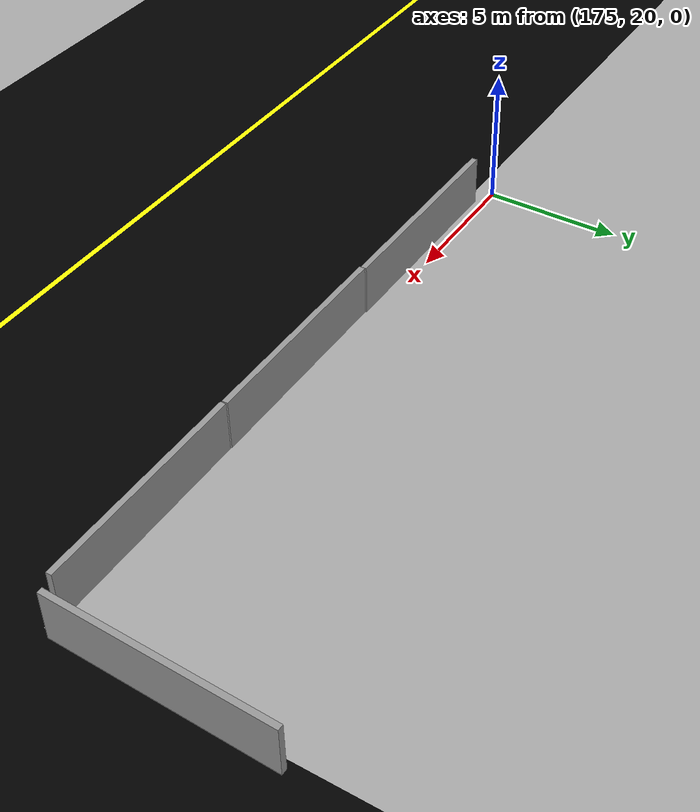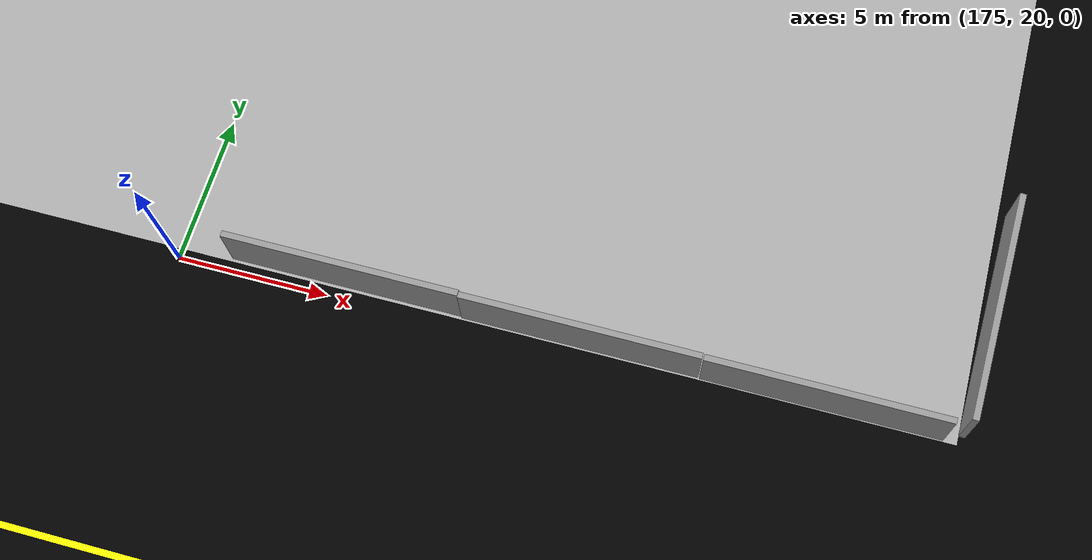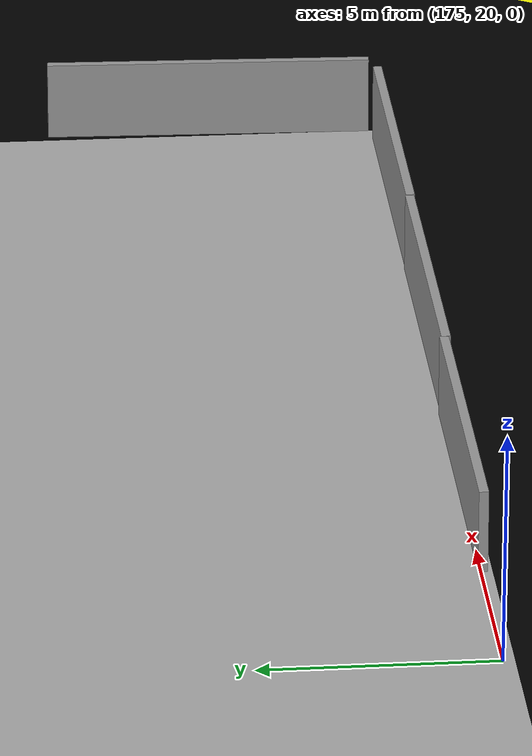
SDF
<sdf version="1.6">
 <world name="default">
  <light name="sun" type="directional">
   <pose>0 0 10 0 -0 0</pose>
   <diffuse>0.8 0.8 0.8 1</diffuse>
   <specular>0.2 0.2 0.2 1</specular>
   <attenuation>
    <range>1000</range>
    <constant>0.9</constant>
    <linear>0.01</linear>
    <quadratic>0.001</quadratic>
   </attenuation>
   <direction>-0.5 0.1 -0.9</direction>
  </light>
  <model name="LineTrack">
   <pose>0 0 1 0 -0 0</pose>
   <static>1</static>
   <link name="link">
    <inertial><mass>1000</mass></inertial>
    <collision name="collision">
     <geometry><mesh><uri>model://LineTrack/PISTA4_updated.dae</uri></mesh></geometry>
    </collision>
    <visual name="visual">
     <geometry><mesh><uri>model://LineTrack/PISTA4_updated.dae</uri></mesh></geometry>
    </visual>
   </link>
  </model>
  <gravity>0 0 -9.8</gravity>
  <magnetic_field>6e-06 2.3e-05 -4.2e-05</magnetic_field>
  <atmosphere type="adiabatic"/>
  <physics name="default_physics" default="0" type="ode">
   <max_step_size>0.001</max_step_size>
   <real_time_factor>1</real_time_factor>
   <real_time_update_rate>400</real_time_update_rate>
  </physics>
  <scene><ambient>0.4 0.4 0.4 1</ambient><background>0.7 0.7 0.7 1</background><shadows>1</shadows></scene>
  <spherical_coordinates>
   <surface_model>EARTH_WGS84</surface_model>
   <latitude_deg>0</latitude_deg>
   <longitude_deg>0</longitude_deg>
   <elevation>0</elevation>
   <heading_deg>0</heading_deg>
  </spherical_coordinates>
  <model name="grey_wall">
   <static>1</static>
   <link name="link">
    <pose>0 0 1.4 0 -0 0</pose>
    <collision name="collision"><geometry><box><size>7.5 0.2 2.8</size></box></geometry></collision>
    <visual name="visual">
     <cast_shadows>0</cast_shadows>
     <geometry><box><size>7.5 0.2 2.8</size></box></geometry>
     <material>
      <script>
       <uri>model://grey_wall/materials/scripts</uri>
       <uri>model://grey_wall/materials/textures</uri>
       <name>vrc/grey_wall</name>
      </script>
     </material>
    </visual>
   </link>
   <pose>195.824 20.142 0 0 -0 0</pose>
  </model>
  <model name="grey_wall_0">
   <static>1</static>
   <link name="link">
    <pose>0 0 1.4 0 -0 0</pose>
    <collision name="collision"><geometry><box><size>7.5 0.2 2.8</size></box></geometry></collision>
    <visual name="visual">
     <cast_shadows>0</cast_shadows>
     <geometry><box><size>7.5 0.2 2.8</size></box></geometry>
     <material>
      <script>
       <uri>model://grey_wall/materials/scripts</uri>
       <uri>model://grey_wall/materials/textures</uri>
       <name>vrc/grey_wall</name>
      </script>
     </material>
    </visual>
   </link>
   <pose>188.283 20.1614 0 0 -0 0</pose>
  </model>
  <model name="grey_wall_1">
   <static>1</static>
   <link name="link">
    <pose>0 0 1.4 0 -0 0</pose>
    <collision name="collision"><geometry><box><size>7.5 0.2 2.8</size></box></geometry></collision>
    <visual name="visual">
     <cast_shadows>0</cast_shadows>
     <geometry><box><size>7.5 0.2 2.8</size></box></geometry>
     <material>
      <script>
       <uri>model://grey_wall/materials/scripts</uri>
       <uri>model://grey_wall/materials/textures</uri>
       <name>vrc/grey_wall</name>
      </script>
     </material>
    </visual>
   </link>
   <pose>180.771 20.2026 0 0 -0 0</pose>
  </model>
  <model name="grey_wall_2">
   <static>1</static>
   <link name="link">
    <pose>0 0 1.4 0 -0 0</pose>
    <collision name="collision"><geometry><box><size>7.5 0.2 2.8</size></box></geometry></collision>
    <visual name="visual">
     <cast_shadows>0</cast_shadows>
     <geometry><box><size>7.5 0.2 2.8</size></box></geometry>
     <material>
      <script>
       <uri>model://grey_wall/materials/scripts</uri>
       <uri>model://grey_wall/materials/textures</uri>
       <name>vrc/grey_wall</name>
      </script>
     </material>
    </visual>
   </link>
   <pose>200.206 24.0483 0 0 -0 1.54017</pose>
  </model>
 </world>
</sdf>
